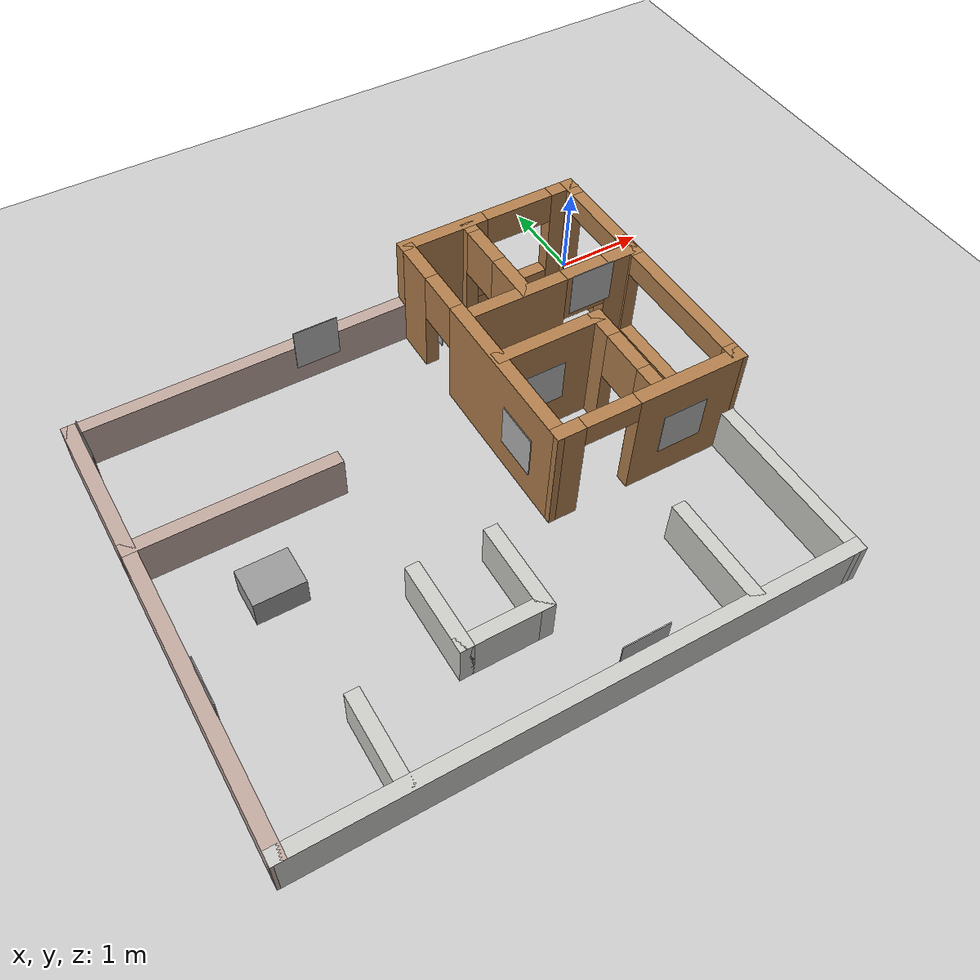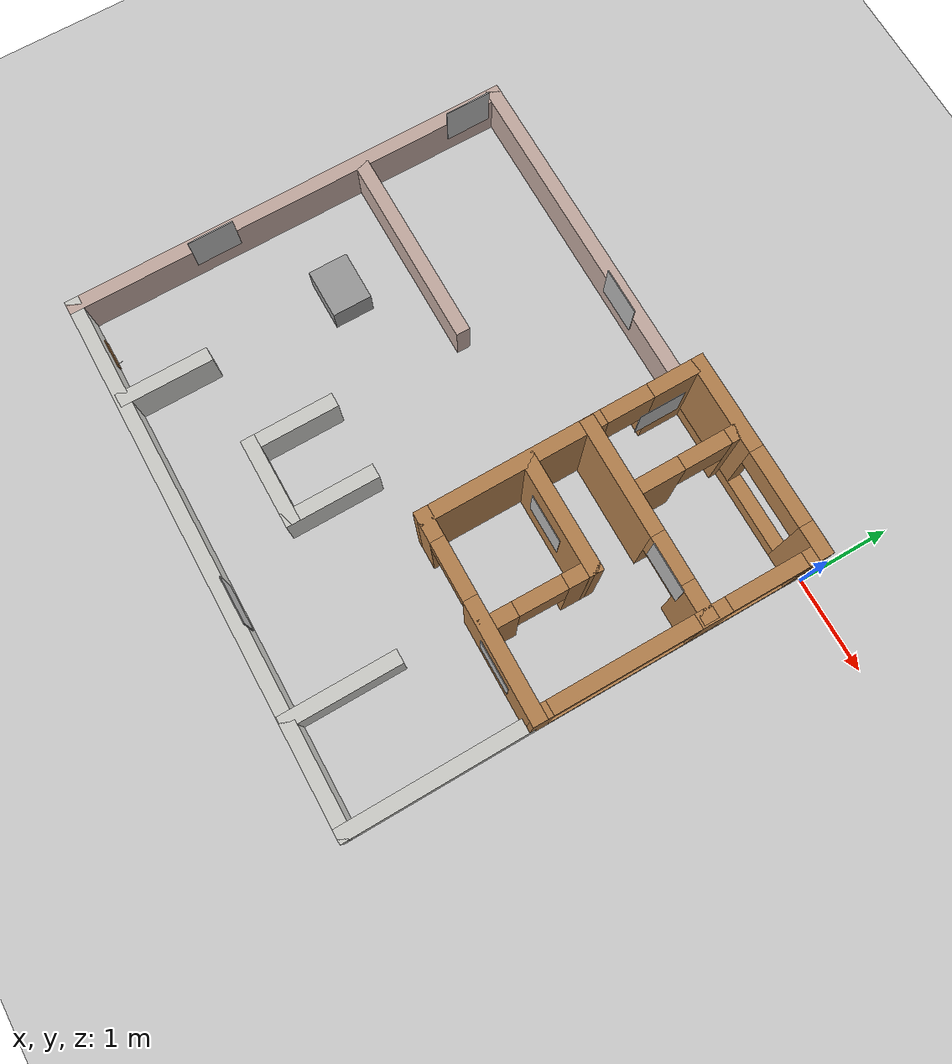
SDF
<sdf version="1.6">
 <world name="default">
  <light name="sun" type="directional">
   <pose>0 0 10 0 -0 0</pose>
   <diffuse>0.8 0.8 0.8 1</diffuse>
   <specular>0.1 0.1 0.1 1</specular>
   <attenuation>
    <range>1000</range>
    <constant>0.9</constant>
    <linear>0.01</linear>
    <quadratic>0.001</quadratic>
   </attenuation>
   <direction>-0.5 0.5 -1</direction>
  </light>
  <model name="ground_plane">
   <static>1</static>
   <link name="link">
    <collision name="collision">
     <geometry><plane><normal>0 0 1</normal><size>100 100</size></plane></geometry>
     <surface><friction><ode><mu>100</mu><mu2>50</mu2></ode></friction></surface>
    </collision>
    <visual name="visual">
     <cast_shadows>0</cast_shadows>
     <geometry><plane><normal>0 0 1</normal><size>100 100</size></plane></geometry>
     <material>
      <script><uri>file://media/materials/scripts/gazebo.material</uri><name>Gazebo/Grey</name></script>
     </material>
    </visual>
   </link>
  </model>
  <gravity>0 0 -9.8</gravity>
  <magnetic_field>6e-06 2.3e-05 -4.2e-05</magnetic_field>
  <atmosphere type="adiabatic"/>
  <physics name="default_physics" default="0" type="ode">
   <max_step_size>0.001</max_step_size>
   <real_time_factor>1</real_time_factor>
   <real_time_update_rate>1000</real_time_update_rate>
  </physics>
  <scene><ambient>0.4 0.4 0.4 1</ambient><background>0.7 0.7 0.7 1</background><shadows>1</shadows></scene>
  <spherical_coordinates>
   <surface_model>EARTH_WGS84</surface_model>
   <latitude_deg>0</latitude_deg>
   <longitude_deg>0</longitude_deg>
   <elevation>0</elevation>
   <heading_deg>0</heading_deg>
  </spherical_coordinates>
  <model name="Muzeum">
   <pose>-3 -2.5 0 0 -0 0</pose>
   <link name="Wall_0">
    <collision name="Wall_0_Collision">
     <geometry><box><size>5.9351 0.15 0.5</size></box></geometry>
     <pose>0 0 0.25 0 -0 0</pose>
    </collision>
    <visual name="Wall_0_Visual">
     <pose>0 0 0.25 0 -0 0</pose>
     <geometry><box><size>5.9351 0.15 0.5</size></box></geometry>
     <material>
      <script><uri>file://media/materials/scripts/gazebo.material</uri><name>Gazebo/CeilingTiled</name></script>
      <ambient>0.760784 0.662745 0.627451 1</ambient>
     </material>
    </visual>
    <pose>-0.007007 -2.42791 0 0 0 -0.003148</pose>
   </link>
   <link name="Wall_10">
    <collision name="Wall_10_Collision">
     <geometry><box><size>2.25 0.15 0.5</size></box></geometry>
     <pose>0 0 0.25 0 -0 0</pose>
    </collision>
    <visual name="Wall_10_Visual">
     <pose>0 0 0.25 0 -0 0</pose>
     <geometry><box><size>2.25 0.15 0.5</size></box></geometry>
     <material>
      <script><uri>file://media/materials/scripts/gazebo.material</uri><name>Gazebo/Grey</name></script>
      <ambient>0.760784 0.662745 0.627451 1</ambient>
     </material>
    </visual>
    <pose>-1.84954 0.824193 0 0 -0 0</pose>
   </link>
   <link name="Wall_12">
    <collision name="Wall_12_Collision">
     <geometry><box><size>1 0.15 0.5</size></box></geometry>
     <pose>0 0 0.25 0 -0 0</pose>
    </collision>
    <visual name="Wall_12_Visual">
     <pose>0 0 0.25 0 -0 0</pose>
     <geometry><box><size>1 0.15 0.5</size></box></geometry>
     <material>
      <script><uri>file://media/materials/scripts/gazebo.material</uri><name>Gazebo/CeilingTiled</name></script>
      <ambient>0.760784 0.662745 0.627451 1</ambient>
     </material>
    </visual>
    <pose>-0.729544 -1.11281 0 0 0 -1.5708</pose>
   </link>
   <link name="Wall_13">
    <collision name="Wall_13_Collision">
     <geometry><box><size>0.979959 0.15 0.5</size></box></geometry>
     <pose>0 0 0.25 0 -0 0</pose>
    </collision>
    <visual name="Wall_13_Visual">
     <pose>0 0 0.25 0 -0 0</pose>
     <geometry><box><size>0.979959 0.15 0.5</size></box></geometry>
     <material>
      <script><uri>file://media/materials/scripts/gazebo.material</uri><name>Gazebo/CeilingTiled</name></script>
      <ambient>0.760784 0.662745 0.627451 1</ambient>
     </material>
    </visual>
    <pose>-0.314544 -1.53781 0 0 -0 0</pose>
   </link>
   <link name="Wall_14">
    <collision name="Wall_14_Collision">
     <geometry><box><size>1.00821 0.15 0.5</size></box></geometry>
     <pose>0 0 0.25 0 -0 0</pose>
    </collision>
    <visual name="Wall_14_Visual">
     <pose>0 0 0.25 0 -0 0</pose>
     <geometry><box><size>1.00821 0.15 0.5</size></box></geometry>
     <material>
      <script><uri>file://media/materials/scripts/gazebo.material</uri><name>Gazebo/CeilingTiled</name></script>
      <ambient>0.760784 0.662745 0.627451 1</ambient>
     </material>
    </visual>
    <pose>0.100456 -1.10881 0 0 -0 1.5708</pose>
   </link>
   <link name="Wall_16">
    <collision name="Wall_16_Collision">
     <geometry><box><size>1.25027 0.15 1.25</size></box></geometry>
     <pose>0 0 0.625 0 -0 0</pose>
    </collision>
    <visual name="Wall_16_Visual">
     <pose>0 0 0.625 0 -0 0</pose>
     <geometry><box><size>1.25027 0.15 1.25</size></box></geometry>
     <material>
      <script><uri>file://media/materials/scripts/gazebo.material</uri><name>Gazebo/Wood</name></script>
      <ambient>1 1 1 1</ambient>
     </material>
    </visual>
    <pose>1.46896 0.594193 0 0 -0 0</pose>
   </link>
   <link name="Wall_17">
    <pose>2.01146 0.070193 0 0 0 -1.58606</pose>
    <visual name="Wall_17_Visual_0">
     <pose>-0.420759 0 0.625 0 -0 0</pose>
     <geometry><box><size>0.357124 0.15 1.25</size></box></geometry>
     <material>
      <script><uri>file://media/materials/scripts/gazebo.material</uri><name>Gazebo/Wood</name></script>
      <ambient>1 1 1 1</ambient>
     </material>
    </visual>
    <collision name="Wall_17_Collision_0">
     <geometry><box><size>0.357124 0.15 1.25</size></box></geometry>
     <pose>-0.420759 0 0.625 0 -0 0</pose>
    </collision>
    <visual name="Wall_17_Visual_1">
     <pose>0.428562 0 0.625 0 -0 0</pose>
     <geometry><box><size>0.341518 0.15 1.25</size></box></geometry>
     <material>
      <script><uri>file://media/materials/scripts/gazebo.material</uri><name>Gazebo/Wood</name></script>
      <ambient>1 1 1 1</ambient>
     </material>
    </visual>
    <collision name="Wall_17_Collision_1">
     <geometry><box><size>0.341518 0.15 1.25</size></box></geometry>
     <pose>0.428562 0 0.625 0 -0 0</pose>
    </collision>
    <visual name="Wall_17_Visual_2">
     <pose>0.007803 0 0.975 0 -0 0</pose>
     <geometry><box><size>0.5 0.15 0.55</size></box></geometry>
     <material>
      <script><uri>file://media/materials/scripts/gazebo.material</uri><name>Gazebo/Wood</name></script>
      <ambient>1 1 1 1</ambient>
     </material>
    </visual>
    <collision name="Wall_17_Collision_2">
     <geometry><box><size>0.5 0.15 0.55</size></box></geometry>
     <pose>0.007803 0 0.975 0 -0 0</pose>
    </collision>
   </link>
   <link name="Wall_19">
    <pose>1.88387 1.24696 0 0 0 -0.003258</pose>
    <visual name="Wall_19_Visual_0">
     <pose>-0.448853 0 0.625 0 -0 0</pose>
     <geometry><box><size>1.23514 0.15 1.25</size></box></geometry>
     <material>
      <script><uri>file://media/materials/scripts/gazebo.material</uri><name>Gazebo/Wood</name></script>
      <ambient>1 1 1 1</ambient>
     </material>
    </visual>
    <collision name="Wall_19_Collision_0">
     <geometry><box><size>1.23514 0.15 1.25</size></box></geometry>
     <pose>-0.448853 0 0.625 0 -0 0</pose>
    </collision>
    <visual name="Wall_19_Visual_1">
     <pose>0.867571 0 0.625 0 -0 0</pose>
     <geometry><box><size>0.397706 0.15 1.25</size></box></geometry>
     <material>
      <script><uri>file://media/materials/scripts/gazebo.material</uri><name>Gazebo/Wood</name></script>
      <ambient>1 1 1 1</ambient>
     </material>
    </visual>
    <collision name="Wall_19_Collision_1">
     <geometry><box><size>0.397706 0.15 1.25</size></box></geometry>
     <pose>0.867571 0 0.625 0 -0 0</pose>
    </collision>
    <visual name="Wall_19_Visual_2">
     <pose>0.418718 0 0.975 0 -0 0</pose>
     <geometry><box><size>0.5 0.15 0.55</size></box></geometry>
     <material>
      <script><uri>file://media/materials/scripts/gazebo.material</uri><name>Gazebo/Wood</name></script>
      <ambient>1 1 1 1</ambient>
     </material>
    </visual>
    <collision name="Wall_19_Collision_2">
     <geometry><box><size>0.5 0.15 0.55</size></box></geometry>
     <pose>0.418718 0 0.975 0 -0 0</pose>
    </collision>
   </link>
   <link name="Wall_21">
    <pose>1.60746 1.80819 0 0 -0 1.5708</pose>
    <visual name="Wall_21_Visual_0">
     <pose>-0.328111 0 0.625 0 -0 0</pose>
     <geometry><box><size>0.593779 0.15 1.25</size></box></geometry>
     <material>
      <script><uri>file://media/materials/scripts/gazebo.material</uri><name>Gazebo/Wood</name></script>
      <ambient>1 1 1 1</ambient>
     </material>
    </visual>
    <collision name="Wall_21_Collision_0">
     <geometry><box><size>0.593779 0.15 1.25</size></box></geometry>
     <pose>-0.328111 0 0.625 0 -0 0</pose>
    </collision>
    <visual name="Wall_21_Visual_1">
     <pose>0.546889 0 0.625 0 -0 0</pose>
     <geometry><box><size>0.156221 0.15 1.25</size></box></geometry>
     <material>
      <script><uri>file://media/materials/scripts/gazebo.material</uri><name>Gazebo/Wood</name></script>
      <ambient>1 1 1 1</ambient>
     </material>
    </visual>
    <collision name="Wall_21_Collision_1">
     <geometry><box><size>0.156221 0.15 1.25</size></box></geometry>
     <pose>0.546889 0 0.625 0 -0 0</pose>
    </collision>
    <visual name="Wall_21_Visual_2">
     <pose>0.218779 0 0.975 0 -0 0</pose>
     <geometry><box><size>0.5 0.15 0.55</size></box></geometry>
     <material>
      <script><uri>file://media/materials/scripts/gazebo.material</uri><name>Gazebo/Wood</name></script>
      <ambient>1 1 1 1</ambient>
     </material>
    </visual>
    <collision name="Wall_21_Collision_2">
     <geometry><box><size>0.5 0.15 0.55</size></box></geometry>
     <pose>0.218779 0 0.975 0 -0 0</pose>
    </collision>
   </link>
   <link name="Wall_23">
    <collision name="Wall_23_Collision">
     <geometry><box><size>1.25 0.15 0.5</size></box></geometry>
     <pose>0 0 0.25 0 -0 0</pose>
    </collision>
    <visual name="Wall_23_Visual">
     <pose>0 0 0.25 0 -0 0</pose>
     <geometry><box><size>1.25 0.15 0.5</size></box></geometry>
     <material>
      <script><uri>file://media/materials/scripts/gazebo.material</uri><name>Gazebo/CeilingTiled</name></script>
      <ambient>0.760784 0.662745 0.627451 1</ambient>
     </material>
    </visual>
    <pose>1.76746 -1.87681 0 0 -0 1.5708</pose>
   </link>
   <link name="Wall_26">
    <collision name="Wall_26_Collision">
     <geometry><box><size>1 0.15 0.5</size></box></geometry>
     <pose>0 0 0.25 0 -0 0</pose>
    </collision>
    <visual name="Wall_26_Visual">
     <pose>0 0 0.25 0 -0 0</pose>
     <geometry><box><size>1 0.15 0.5</size></box></geometry>
     <material>
      <script><uri>file://media/materials/scripts/gazebo.material</uri><name>Gazebo/CeilingTiled</name></script>
      <ambient>0.760784 0.662745 0.627451 1</ambient>
     </material>
    </visual>
    <pose>-1.76654 -1.96681 0 0 -0 1.5708</pose>
   </link>
   <link name="Wall_28">
    <pose>2.89167 0.974494 0 0 -0 1.56552</pose>
    <visual name="Wall_28_Visual_0">
     <pose>-1.43397 0 0.625 0 -0 0</pose>
     <geometry><box><size>0.206833 0.15 1.25</size></box></geometry>
     <material>
      <script><uri>file://media/materials/scripts/gazebo.material</uri><name>Gazebo/Wood</name></script>
      <ambient>1 1 1 1</ambient>
     </material>
    </visual>
    <collision name="Wall_28_Collision_0">
     <geometry><box><size>0.206833 0.15 1.25</size></box></geometry>
     <pose>-1.43397 0 0.625 0 -0 0</pose>
    </collision>
    <visual name="Wall_28_Visual_1">
     <pose>0.103416 0 0.1 0 -0 0</pose>
     <geometry><box><size>2.86795 0.15 0.2</size></box></geometry>
     <material>
      <script><uri>file://media/materials/scripts/gazebo.material</uri><name>Gazebo/Wood</name></script>
      <ambient>1 1 1 1</ambient>
     </material>
    </visual>
    <collision name="Wall_28_Collision_1">
     <geometry><box><size>2.86795 0.15 0.2</size></box></geometry>
     <pose>0.103416 0 0.1 0 -0 0</pose>
    </collision>
    <visual name="Wall_28_Visual_2">
     <pose>0.325307 0 0.725 0 -0 0</pose>
     <geometry><box><size>0.311727 0.15 1.05</size></box></geometry>
     <material>
      <script><uri>file://media/materials/scripts/gazebo.material</uri><name>Gazebo/Wood</name></script>
      <ambient>1 1 1 1</ambient>
     </material>
    </visual>
    <collision name="Wall_28_Collision_2">
     <geometry><box><size>0.311727 0.15 1.05</size></box></geometry>
     <pose>0.325307 0 0.725 0 -0 0</pose>
    </collision>
    <visual name="Wall_28_Visual_3">
     <pose>1.40928 0 0.725 0 -0 0</pose>
     <geometry><box><size>0.256218 0.15 1.05</size></box></geometry>
     <material>
      <script><uri>file://media/materials/scripts/gazebo.material</uri><name>Gazebo/Wood</name></script>
      <ambient>1 1 1 1</ambient>
     </material>
    </visual>
    <collision name="Wall_28_Collision_3">
     <geometry><box><size>0.256218 0.15 1.05</size></box></geometry>
     <pose>1.40928 0 0.725 0 -0 0</pose>
    </collision>
    <visual name="Wall_28_Visual_4">
     <pose>-0.580556 0 1.125 0 -0 0</pose>
     <geometry><box><size>1.5 0.15 0.25</size></box></geometry>
     <material>
      <script><uri>file://media/materials/scripts/gazebo.material</uri><name>Gazebo/Wood</name></script>
      <ambient>1 1 1 1</ambient>
     </material>
    </visual>
    <collision name="Wall_28_Collision_4">
     <geometry><box><size>1.5 0.15 0.25</size></box></geometry>
     <pose>-0.580556 0 1.125 0 -0 0</pose>
    </collision>
    <visual name="Wall_28_Visual_5">
     <pose>0.881171 0 1.125 0 -0 0</pose>
     <geometry><box><size>0.8 0.15 0.25</size></box></geometry>
     <material>
      <script><uri>file://media/materials/scripts/gazebo.material</uri><name>Gazebo/Wood</name></script>
      <ambient>1 1 1 1</ambient>
     </material>
    </visual>
    <collision name="Wall_28_Collision_5">
     <geometry><box><size>0.8 0.15 0.25</size></box></geometry>
     <pose>0.881171 0 1.125 0 -0 0</pose>
    </collision>
   </link>
   <link name="Wall_3">
    <collision name="Wall_3_Collision">
     <geometry><box><size>4.99773 0.15 0.5</size></box></geometry>
     <pose>0 0 0.25 0 -0 0</pose>
    </collision>
    <visual name="Wall_3_Visual">
     <pose>0 0 0.25 0 -0 0</pose>
     <geometry><box><size>4.99773 0.15 0.5</size></box></geometry>
     <material>
      <script><uri>file://media/materials/scripts/gazebo.material</uri><name>Gazebo/Grey</name></script>
      <ambient>0.760784 0.662745 0.627451 1</ambient>
     </material>
    </visual>
    <pose>-2.89954 0.005193 0 0 0 -1.5708</pose>
   </link>
   <link name="Wall_33">
    <pose>1.89342 2.43553 0 0 0 -3.14027</pose>
    <visual name="Wall_33_Visual_0">
     <pose>-0.909474 0 0.625 0 -0 0</pose>
     <geometry><box><size>0.343502 0.15 1.25</size></box></geometry>
     <material>
      <script><uri>file://media/materials/scripts/gazebo.material</uri><name>Gazebo/Wood</name></script>
      <ambient>1 1 1 1</ambient>
     </material>
    </visual>
    <collision name="Wall_33_Collision_0">
     <geometry><box><size>0.343502 0.15 1.25</size></box></geometry>
     <pose>-0.909474 0 0.625 0 -0 0</pose>
    </collision>
    <visual name="Wall_33_Visual_1">
     <pose>0.171751 0 0.1 0 -0 0</pose>
     <geometry><box><size>1.81895 0.15 0.2</size></box></geometry>
     <material>
      <script><uri>file://media/materials/scripts/gazebo.material</uri><name>Gazebo/Wood</name></script>
      <ambient>1 1 1 1</ambient>
     </material>
    </visual>
    <collision name="Wall_33_Collision_1">
     <geometry><box><size>1.81895 0.15 0.2</size></box></geometry>
     <pose>0.171751 0 0.1 0 -0 0</pose>
    </collision>
    <visual name="Wall_33_Visual_2">
     <pose>0.571751 0 0.725 0 -0 0</pose>
     <geometry><box><size>1.01895 0.15 1.05</size></box></geometry>
     <material>
      <script><uri>file://media/materials/scripts/gazebo.material</uri><name>Gazebo/Wood</name></script>
      <ambient>1 1 1 1</ambient>
     </material>
    </visual>
    <collision name="Wall_33_Collision_2">
     <geometry><box><size>1.01895 0.15 1.05</size></box></geometry>
     <pose>0.571751 0 0.725 0 -0 0</pose>
    </collision>
    <visual name="Wall_33_Visual_3">
     <pose>-0.337723 0 1.075 0 -0 0</pose>
     <geometry><box><size>0.8 0.15 0.35</size></box></geometry>
     <material>
      <script><uri>file://media/materials/scripts/gazebo.material</uri><name>Gazebo/Wood</name></script>
      <ambient>1 1 1 1</ambient>
     </material>
    </visual>
    <collision name="Wall_33_Collision_3">
     <geometry><box><size>0.8 0.15 0.35</size></box></geometry>
     <pose>-0.337723 0 1.075 0 -0 0</pose>
    </collision>
   </link>
   <link name="Wall_35">
    <collision name="Wall_35_Collision">
     <geometry><box><size>2.09915 0.15 0.5</size></box></geometry>
     <pose>0 0 0.25 0 -0 0</pose>
    </collision>
    <visual name="Wall_35_Visual">
     <pose>0 0 0.25 0 -0 0</pose>
     <geometry><box><size>2.09915 0.15 0.5</size></box></geometry>
     <material>
      <script><uri>file://media/materials/scripts/gazebo.material</uri><name>Gazebo/CeilingTiled</name></script>
      <ambient>0.760784 0.662745 0.627451 1</ambient>
     </material>
    </visual>
    <pose>2.88474 -1.46245 0 0 -0 1.57161</pose>
   </link>
   <link name="Wall_37">
    <collision name="Wall_37_Collision">
     <geometry><box><size>3.93685 0.15 0.5</size></box></geometry>
     <pose>0 0 0.25 0 -0 0</pose>
    </collision>
    <visual name="Wall_37_Visual">
     <pose>0 0 0.25 0 -0 0</pose>
     <geometry><box><size>3.93685 0.15 0.5</size></box></geometry>
     <material>
      <script><uri>file://media/materials/scripts/gazebo.material</uri><name>Gazebo/Grey</name></script>
      <ambient>0.760784 0.662745 0.627451 1</ambient>
     </material>
    </visual>
    <pose>-1.00604 2.43169 0 0 -0 0.00132</pose>
   </link>
   <link name="Wall_7">
    <pose>0.887455 0.947193 0 0 0 -1.5708</pose>
    <visual name="Wall_7_Visual_0">
     <pose>-1.2252 0 0.625 0 -0 0</pose>
     <geometry><box><size>0.549592 0.15 1.25</size></box></geometry>
     <material>
      <script><uri>file://media/materials/scripts/gazebo.material</uri><name>Gazebo/Wood</name></script>
      <ambient>1 1 1 1</ambient>
     </material>
    </visual>
    <collision name="Wall_7_Collision_0">
     <geometry><box><size>0.549592 0.15 1.25</size></box></geometry>
     <pose>-1.2252 0 0.625 0 -0 0</pose>
    </collision>
    <visual name="Wall_7_Visual_1">
     <pose>0.524796 0 0.625 0 -0 0</pose>
     <geometry><box><size>1.95041 0.15 1.25</size></box></geometry>
     <material>
      <script><uri>file://media/materials/scripts/gazebo.material</uri><name>Gazebo/Wood</name></script>
      <ambient>1 1 1 1</ambient>
     </material>
    </visual>
    <collision name="Wall_7_Collision_1">
     <geometry><box><size>1.95041 0.15 1.25</size></box></geometry>
     <pose>0.524796 0 0.625 0 -0 0</pose>
    </collision>
    <visual name="Wall_7_Visual_2">
     <pose>-0.700408 0 0.975 0 -0 0</pose>
     <geometry><box><size>0.5 0.15 0.55</size></box></geometry>
     <material>
      <script><uri>file://media/materials/scripts/gazebo.material</uri><name>Gazebo/Wood</name></script>
      <ambient>1 1 1 1</ambient>
     </material>
    </visual>
    <collision name="Wall_7_Collision_2">
     <geometry><box><size>0.5 0.15 0.55</size></box></geometry>
     <pose>-0.700408 0 0.975 0 -0 0</pose>
    </collision>
   </link>
   <link name="Wall_8">
    <pose>1.8857 -0.482841 0 0 0 -0.005043</pose>
    <visual name="Wall_8_Visual_0">
     <pose>-0.91578 0 0.625 0 -0 0</pose>
     <geometry><box><size>0.314933 0.15 1.25</size></box></geometry>
     <material>
      <script><uri>file://media/materials/scripts/gazebo.material</uri><name>Gazebo/Wood</name></script>
      <ambient>1 1 1 1</ambient>
     </material>
    </visual>
    <collision name="Wall_8_Collision_0">
     <geometry><box><size>0.314933 0.15 1.25</size></box></geometry>
     <pose>-0.91578 0 0.625 0 -0 0</pose>
    </collision>
    <visual name="Wall_8_Visual_1">
     <pose>0.457466 0 0.625 0 -0 0</pose>
     <geometry><box><size>1.23156 0.15 1.25</size></box></geometry>
     <material>
      <script><uri>file://media/materials/scripts/gazebo.material</uri><name>Gazebo/Wood</name></script>
      <ambient>1 1 1 1</ambient>
     </material>
    </visual>
    <collision name="Wall_8_Collision_1">
     <geometry><box><size>1.23156 0.15 1.25</size></box></geometry>
     <pose>0.457466 0 0.625 0 -0 0</pose>
    </collision>
    <visual name="Wall_8_Visual_2">
     <pose>-0.458314 0 1.125 0 -0 0</pose>
     <geometry><box><size>0.6 0.15 0.25</size></box></geometry>
     <material>
      <script><uri>file://media/materials/scripts/gazebo.material</uri><name>Gazebo/Wood</name></script>
      <ambient>1 1 1 1</ambient>
     </material>
    </visual>
    <collision name="Wall_8_Collision_2">
     <geometry><box><size>0.6 0.15 0.25</size></box></geometry>
     <pose>-0.458314 0 1.125 0 -0 0</pose>
    </collision>
   </link>
   <static>1</static>
  </model>
  <model name="metal_peg_board_0">
   <link name="base">
    <pose>0 0 0.00523 0 -0 0</pose>
    <inertial>
     <mass>0.2765</mass>
     <inertia>
      <ixx>0.0025148</ixx>
      <ixy>0</ixy>
      <ixz>0</ixz>
      <iyy>0.00024037</iyy>
      <iyz>0</iyz>
      <izz>0.00275013</izz>
     </inertia>
    </inertial>
    <collision name="collision">
     <geometry><box><size>0.1016 0.3302 0.01046</size></box></geometry>
     <surface>
      <contact>
       <poissons_ratio>0.347</poissons_ratio>
       <elastic_modulus>8.8e+09</elastic_modulus>
       <ode><kp>100000</kp><kd>100</kd><max_vel>100</max_vel><min_depth>0.001</min_depth></ode>
      </contact>
      <friction>
       <torsional>
        <coefficient>1</coefficient>
        <use_patch_radius>0</use_patch_radius>
        <surface_radius>0.01</surface_radius>
       </torsional>
      </friction>
     </surface>
    </collision>
    <visual name="visual">
     <geometry><box><size>0.1016 0.3302 0.01046</size></box></geometry>
     <material>
      <script><uri>file://media/materials/scripts/gazebo.material</uri><name>Gazebo/Wood</name></script>
     </material>
    </visual>
    <visual name="tee_nut_1">
     <pose>0 -0.116 0 0 -0 0</pose>
     <geometry><cylinder><radius>0.00635</radius><length>0.0105646</length></cylinder></geometry>
     <material>
      <script><uri>file://media/materials/scripts/gazebo.material</uri><name>Gazebo/Grey</name></script>
     </material>
    </visual>
    <visual name="tee_nut_2">
     <pose>0 -0.038 0 0 -0 0</pose>
     <geometry><cylinder><radius>0.00635</radius><length>0.0105646</length></cylinder></geometry>
     <material>
      <script><uri>file://media/materials/scripts/gazebo.material</uri><name>Gazebo/Grey</name></script>
     </material>
    </visual>
    <visual name="tee_nut_3">
     <pose>0 0.038 0 0 -0 0</pose>
     <geometry><cylinder><radius>0.00635</radius><length>0.0105646</length></cylinder></geometry>
     <material>
      <script><uri>file://media/materials/scripts/gazebo.material</uri><name>Gazebo/Grey</name></script>
     </material>
    </visual>
    <visual name="tee_nut_4">
     <pose>0 0.116 0 0 -0 0</pose>
     <geometry><cylinder><radius>0.00635</radius><length>0.0105646</length></cylinder></geometry>
     <material>
      <script><uri>file://media/materials/scripts/gazebo.material</uri><name>Gazebo/Grey</name></script>
     </material>
    </visual>
    <gravity>0</gravity>
   </link>
   <link name="link">
    <pose>0 0.116 0.031 0 -0 0</pose>
    <inertial>
     <mass>0.0121</mass>
     <inertia>
      <ixx>3.90898e-06</ixx>
      <ixy>0</ixy>
      <ixz>0</ixz>
      <iyy>3.90898e-06</iyy>
      <iyz>0</iyz>
      <izz>6.58845e-08</izz>
     </inertia>
    </inertial>
    <collision name="collision">
     <geometry><cylinder><radius>0.0033</radius><length>0.062</length></cylinder></geometry>
     <surface>
      <contact>
       <poissons_ratio>0.305</poissons_ratio>
       <elastic_modulus>2e+11</elastic_modulus>
       <ode><kp>100000</kp><kd>100</kd><max_vel>100</max_vel><min_depth>0.001</min_depth></ode>
      </contact>
      <friction>
       <torsional>
        <coefficient>1</coefficient>
        <use_patch_radius>0</use_patch_radius>
        <surface_radius>0.01</surface_radius>
       </torsional>
      </friction>
     </surface>
    </collision>
    <visual name="visual">
     <geometry><cylinder><radius>0.0033</radius><length>0.062</length></cylinder></geometry>
     <material>
      <script><uri>file://media/materials/scripts/gazebo.material</uri><name>Gazebo/Grey</name></script>
     </material>
    </visual>
    <gravity>0</gravity>
   </link>
   <joint name="board_peg" type="revolute">
    <parent>wooden_board::base</parent>
    <child>peg::link</child>
    <axis>
     <xyz>0 0 1</xyz>
     <limit><upper>0</upper><lower>0</lower></limit>
     <use_parent_model_frame>0</use_parent_model_frame>
     <dynamics><spring_reference>0</spring_reference><spring_stiffness>0</spring_stiffness></dynamics>
    </axis>
   </joint>
   <pose>-5.38944 -4.84037 0.155304 -0.026695 -1.50927 -1.53567</pose>
  </model>
  <model name="unit_box_0_0">
   <link name="link">
    <inertial>
     <mass>0.0751289</mass>
     <inertia>
      <ixx>0.00180619</ixx>
      <ixy>0</ixy>
      <ixz>0</ixz>
      <iyy>0.00249277</iyy>
      <iyz>0</iyz>
      <izz>0.0029962</izz>
     </inertia>
    </inertial>
    <visual name="visual">
     <geometry><box><size>0.542327 0.429481 0.32254</size></box></geometry>
     <material>
      <script><name>Gazebo/Grey</name><uri>file://media/materials/scripts/gazebo.material</uri></script>
      <ambient>0.3 0.3 0.3 1</ambient>
      <diffuse>0.7 0.7 0.7 1</diffuse>
      <specular>0.01 0.01 0.01 1</specular>
      <emissive>0 0 0 1</emissive>
     </material>
    </visual>
    <collision name="collision">
     <geometry><box><size>0.542327 0.429481 0.32254</size></box></geometry>
     <surface>
      <friction>
       <ode><mu>1</mu><mu2>1</mu2><fdir1>0 0 0</fdir1><slip1>0</slip1><slip2>0</slip2></ode>
       <torsional>
        <coefficient>1</coefficient>
        <patch_radius>0</patch_radius>
        <surface_radius>0</surface_radius>
        <use_patch_radius>1</use_patch_radius>
        <ode><slip>0</slip></ode>
       </torsional>
      </friction>
      <bounce><restitution_coefficient>0</restitution_coefficient><threshold>1e+06</threshold></bounce>
      <contact>
       <collide_without_contact>0</collide_without_contact>
       <collide_without_contact_bitmask>1</collide_without_contact_bitmask>
       <collide_bitmask>1</collide_bitmask>
       <ode>
        <soft_cfm>0</soft_cfm>
        <soft_erp>0.2</soft_erp>
        <kp>1e+13</kp>
        <kd>1</kd>
        <max_vel>0.01</max_vel>
        <min_depth>0</min_depth>
       </ode>
       <bullet>
        <split_impulse>1</split_impulse>
        <split_impulse_penetration_threshold>-0.01</split_impulse_penetration_threshold>
        <soft_cfm>0</soft_cfm>
        <soft_erp>0.2</soft_erp>
        <kp>1e+13</kp>
        <kd>1</kd>
       </bullet>
      </contact>
     </surface>
    </collision>
   </link>
   <static>0</static>
   <pose>-4.85752 -2.48517 0.161264 -1.6e-05 2e-06 1e-06</pose>
  </model>
  <model name="aruco_mark_7">
   <static>1</static>
   <link name="link">
    <visual name="visual">
     <geometry><mesh><uri>model://aruco_mark_7/meshes/aruco_mark_7.dae</uri><scale>1 1 1</scale></mesh></geometry>
    </visual>
   </link>
   <pose>-2.1926 -2.40816 0.32775 0 -0 0</pose>
  </model>
  <model name="aruco_mark_1">
   <static>1</static>
   <link name="link">
    <visual name="visual">
     <geometry><mesh><uri>model://aruco_mark_1/meshes/aruco_mark_1.dae</uri><scale>1 1 1</scale></mesh></geometry>
    </visual>
   </link>
   <pose>-0.698953 -3.06235 0.368041 0 -0 1.5708</pose>
  </model>
  <model name="aruco_mark_2">
   <static>1</static>
   <link name="link">
    <visual name="visual">
     <geometry><mesh><uri>model://aruco_mark_2/meshes/aruco_mark_2.dae</uri><scale>1 1 1</scale></mesh></geometry>
    </visual>
   </link>
   <pose>-1.61932 -1.98233 0.368041 0 0 -1.5708</pose>
  </model>
  <model name="aruco_mark_3">
   <static>1</static>
   <link name="link">
    <visual name="visual">
     <geometry><mesh><uri>model://aruco_mark_3/meshes/aruco_mark_3.dae</uri><scale>1 1 1</scale></mesh></geometry>
    </visual>
   </link>
   <pose>-0.638328 -1.33011 0.755768 0 0 -1.5708</pose>
  </model>
  <model name="aruco_mark_4">
   <static>1</static>
   <link name="link">
    <visual name="visual">
     <geometry><mesh><uri>model://aruco_mark_4/meshes/aruco_mark_4.dae</uri><scale>1 1 1</scale></mesh></geometry>
    </visual>
   </link>
   <pose>-2.03659 -0.441157 0.28954 0 -0 0</pose>
  </model>
  <model name="aruco_mark_6">
   <static>1</static>
   <link name="link">
    <visual name="visual">
     <geometry><mesh><uri>model://aruco_mark_6/meshes/aruco_mark_6.dae</uri><scale>1 1 1</scale></mesh></geometry>
    </visual>
   </link>
   <pose>-5.82007 -0.43574 0.221918 0 -0 0</pose>
  </model>
  <model name="aruco_mark_0">
   <static>1</static>
   <link name="link">
    <visual name="visual">
     <geometry><mesh><uri>model://aruco_mark_0/meshes/aruco_mark_0.dae</uri><scale>1 1 1</scale></mesh></geometry>
    </visual>
   </link>
   <pose>-5.82378 -3.39153 0.221918 0 -0 0</pose>
  </model>
  <model name="aruco_mark_5">
   <static>1</static>
   <link name="link">
    <visual name="visual">
     <geometry><mesh><uri>model://aruco_mark_5/meshes/aruco_mark_5.dae</uri><scale>1 1 1</scale></mesh></geometry>
    </visual>
   </link>
   <pose>-2.41578 -4.85092 0.221918 0 -0 1.5708</pose>
  </model>
  <model name="aruco_mark_8">
   <static>1</static>
   <link name="link">
    <visual name="visual">
     <geometry><mesh><uri>model://aruco_mark_8/meshes/aruco_mark_8.dae</uri><scale>1 1 1</scale></mesh></geometry>
    </visual>
   </link>
   <pose>-3.25 -0.15 0.22 0 0 -1.5708</pose>
  </model>
 </world>
</sdf>
